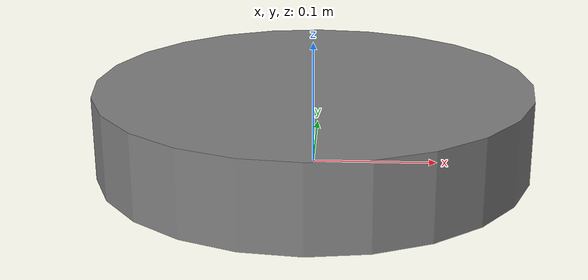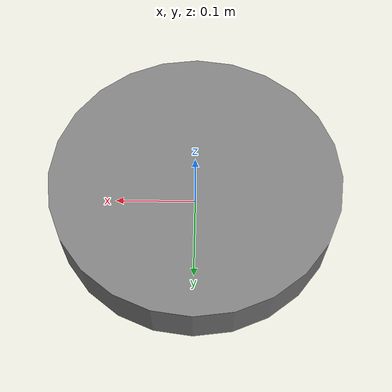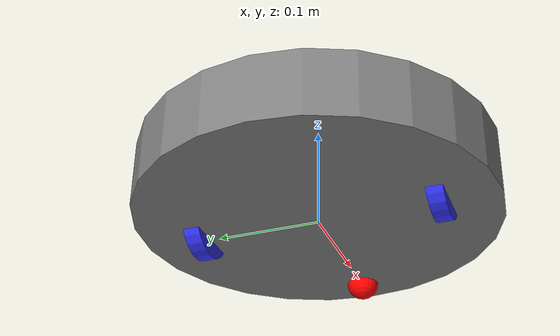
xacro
<?xml version="1.0"?>
<robot xmlns:xacro="http://www.ros.org/wiki/xacro">

    <xacro:include filename="inertial_macros.xacro"/>

    <!-- Adding the colors of the robot's components -->

    <material name="gray">
        <color rgba="0.5 0.5 0.5 1" />
    </material>

    <material name="blue">
        <color rgba="0.2 0.2 1.0 1.0"/>
    </material>

    <material name="red">
        <color rgba="1 0 0 1" />
    </material>

    <!-- Creating base_link -->

    <link name="base_link">

    </link>

    <!-- Creating one joint for the unite the base_link to the chassis_link -->
    <joint name="chassis_joint" type="fixed">
        <parent link="base_link"/>
        <child link="chassis_link"/>
        <origin xyz="-0.17425 0.0 0.0"/>
    </joint>

    <!-- Creating the properties of the chassis -->
    <link name="chassis_link">
        <visual>
            <origin xyz="0.17425 0.0 0.03347"/>
            <geometry>
                <cylinder radius="0.17425" length="0.06694"/>
            </geometry>
            <material name="gray"/>
        </visual>
        <collision>
            <origin xyz="0.17425 0.0 0.03347"/>
            <geometry>
                <cylinder radius="0.17425" length="0.06694"/>
            </geometry>
        </collision>
        <xacro:inertial_cylinder mass="2.7" length="0.06694" radius="0.17425">
            <origin xyz="0.17425 0.0 0.03347" rpy="0.0 0.0 0.0"/>
        </xacro:inertial_cylinder>
    </link>
    <gazebo reference ="chassis_link">
        <material>Gazebo/Gray</material>
    </gazebo>

    <!-- Creating the joint of the left wheel -->
    <joint name="left_wheel_joint" type="continuous">
        <parent link="base_link"/>
        <child link="left_wheel_link"/>
        <origin xyz="0.0 0.1175 0.02" rpy="-${pi/2} 0.0 0.0"/>
        <axis xyz="0.0 0.0 1.0"/>
    </joint>

    <!-- Creating the properties of the left wheel -->
    <link name="left_wheel_link">
        <visual>
            <geometry>
                <cylinder radius="0.036" length="0.016"/>
            </geometry>
            <material name="blue"/>
        </visual>
        <collision>
            <geometry>
                <cylinder radius="0.036" length="0.016"/>
            </geometry>
        </collision>
        <xacro:inertial_cylinder mass="0.2" length="0.016" radius="0.036">
            <origin xyz="0.0 0.0 0.0" rpy="0.0 0.0 0.0"/>
        </xacro:inertial_cylinder>
    </link>
    <gazebo reference ="left_wheel_link">
        <material>Gazebo/Blue</material>
    </gazebo>

    <!-- Creating the joint of the right wheel -->
    <joint name="right_wheel_joint" type="continuous">
        <parent link="base_link"/>
        <child link="right_wheel_link"/>
        <origin xyz="0.0 -0.1175 0.02" rpy="${pi/2} 0.0 0.0"/>
        <axis xyz="0.0 0.0 1.0"/>
    </joint>

    <!-- Creating the properties of the left wheel -->
    <link name="right_wheel_link">
        <visual>
            <geometry>
                <cylinder radius="0.036" length="0.016"/>
            </geometry>
            <material name="blue"/>
        </visual>
        <collision>
            <geometry>
                <cylinder radius="0.036" length="0.016"/>
            </geometry>
        </collision>
        <xacro:inertial_cylinder mass="0.2" length="0.016" radius="0.036">
            <origin xyz="0.0 0.0 0.0" rpy="0.0 0.0 0.0"/>
        </xacro:inertial_cylinder>
    </link>
    <gazebo reference ="right_wheel_link">
        <material>Gazebo/Blue</material>
    </gazebo>

    <!-- Creating the joint of the caster wheel -->
    <joint name="caster_wheel_joint" type="fixed">
        <parent link="base_link"/>
        <child link="caster_wheel_link"/>
        <origin xyz="0.142 0.0 0.0"/>
    </joint>

    <!-- Creating the properties of the caster wheel -->
    <link name="caster_wheel_link">
        <visual>
            <geometry>
                <sphere radius="0.016"/>
            </geometry>
            <material name="red"/>
        </visual>
        <collision>
            <geometry>
                <sphere radius="0.016"/>
            </geometry>
        </collision>
        <xacro:inertial_sphere mass="0.4" radius="0.016">
            <origin xyz="0.0 0.0 0.0" rpy="0.0 0.0 0.0"/>
        </xacro:inertial_sphere>
    </link>
    <gazebo reference ="caster_wheel_link">
        <material>Gazebo/Red</material>
        <mu1 value="0.001"/>
        <mu2 value="0.001"/>
    </gazebo>
</robot>
